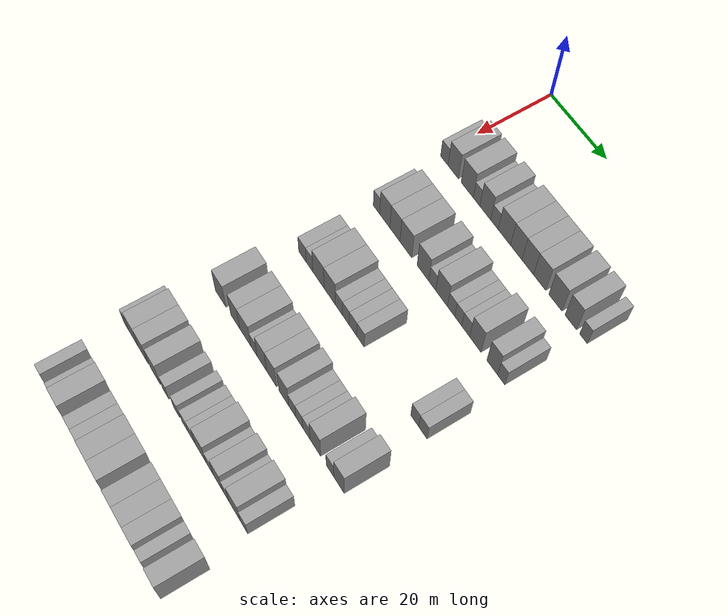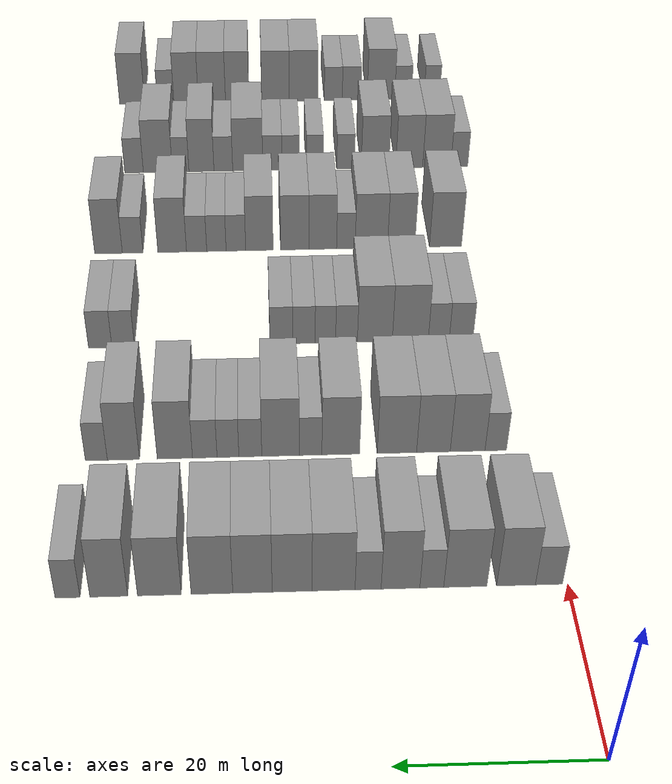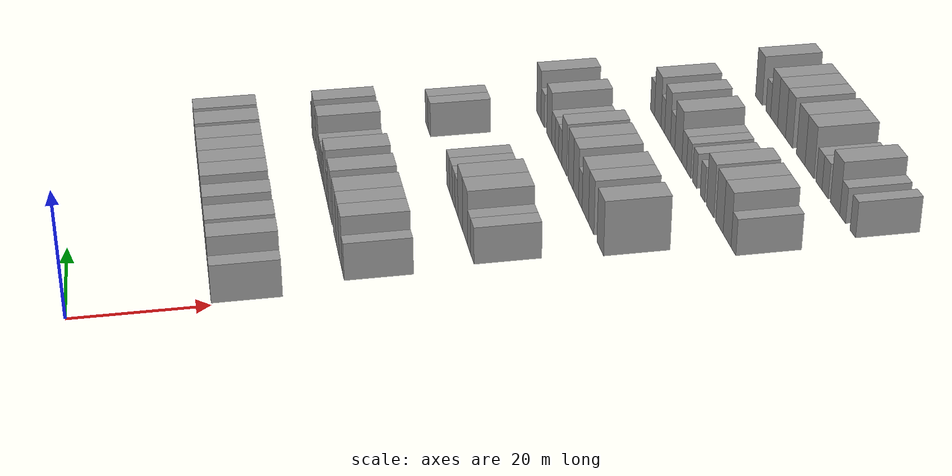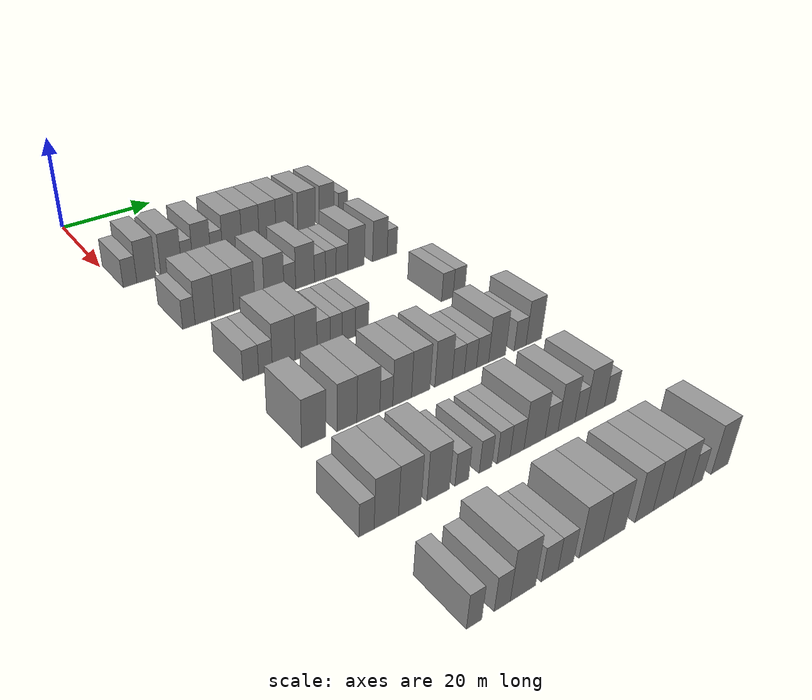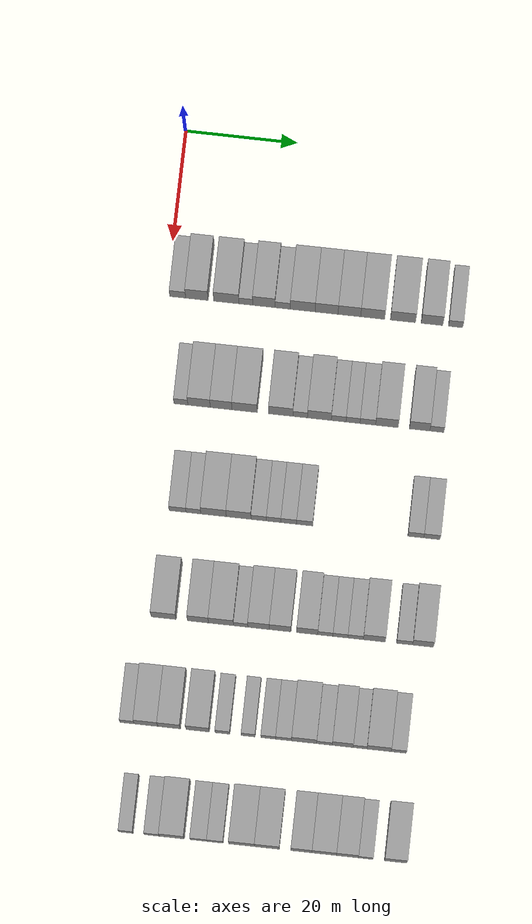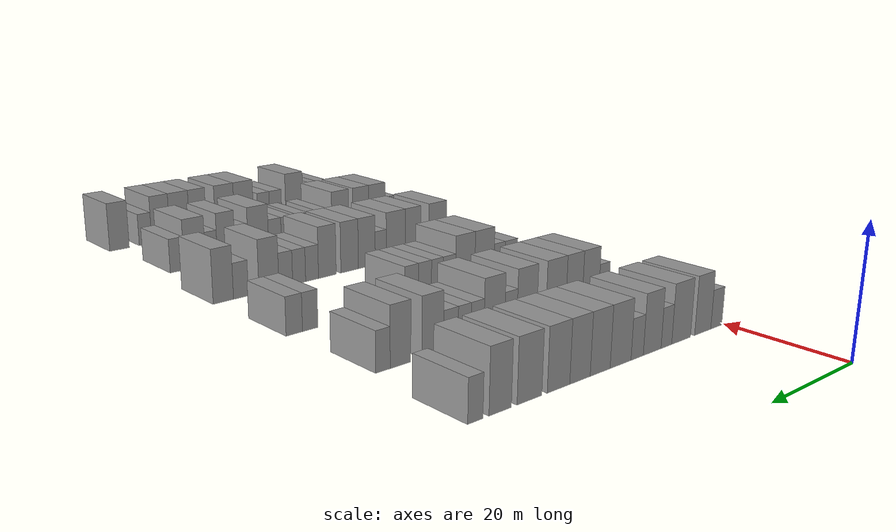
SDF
<sdf version="1.6">
 <world name="default">
  <model name="building_86">
   <static>1</static>
   <pose>25.0000 1.9750 0 0.000000 0.000000 0.000000</pose>
   <link name="link">
    <pose>0 0 3.00 0 0 0</pose>
    <collision name="collision"><geometry><box><size>10.0000 2.8184 6.0000</size></box></geometry></collision>
    <visual name="visual">
     <cast_shadows>0</cast_shadows>
     <geometry><box><size>10.0000 2.8184 6.0000</size></box></geometry>
     <material>
      <script>
       <uri>model://grey_wall/materials/scripts</uri>
       <uri>model://grey_wall/materials/textures</uri>
       <name>vrc/grey_wall</name>
      </script>
     </material>
    </visual>
   </link>
  </model>
  <model name="building_87">
   <static>1</static>
   <pose>25.0000 5.3856 0 0.000000 0.000000 0.000000</pose>
   <link name="link">
    <pose>0 0 4.50 0 0 0</pose>
    <collision name="collision"><geometry><box><size>10.0000 4.0027 9.0000</size></box></geometry></collision>
    <visual name="visual">
     <cast_shadows>0</cast_shadows>
     <geometry><box><size>10.0000 4.0027 9.0000</size></box></geometry>
     <material>
      <script>
       <uri>model://grey_wall/materials/scripts</uri>
       <uri>model://grey_wall/materials/textures</uri>
       <name>vrc/grey_wall</name>
      </script>
     </material>
    </visual>
   </link>
  </model>
  <model name="building_88">
   <static>1</static>
   <pose>25.0000 10.6264 0 0.000000 0.000000 0.000000</pose>
   <link name="link">
    <pose>0 0 4.50 0 0 0</pose>
    <collision name="collision"><geometry><box><size>10.0000 4.4790 9.0000</size></box></geometry></collision>
    <visual name="visual">
     <cast_shadows>0</cast_shadows>
     <geometry><box><size>10.0000 4.4790 9.0000</size></box></geometry>
     <material>
      <script>
       <uri>model://grey_wall/materials/scripts</uri>
       <uri>model://grey_wall/materials/textures</uri>
       <name>vrc/grey_wall</name>
      </script>
     </material>
    </visual>
   </link>
  </model>
  <model name="building_89">
   <static>1</static>
   <pose>25.0000 14.0957 0 0.000000 0.000000 0.000000</pose>
   <link name="link">
    <pose>0 0 3.00 0 0 0</pose>
    <collision name="collision"><geometry><box><size>10.0000 2.4597 6.0000</size></box></geometry></collision>
    <visual name="visual">
     <cast_shadows>0</cast_shadows>
     <geometry><box><size>10.0000 2.4597 6.0000</size></box></geometry>
     <material>
      <script>
       <uri>model://grey_wall/materials/scripts</uri>
       <uri>model://grey_wall/materials/textures</uri>
       <name>vrc/grey_wall</name>
      </script>
     </material>
    </visual>
   </link>
  </model>
  <model name="building_90">
   <static>1</static>
   <pose>25.0000 17.3226 0 0.000000 0.000000 0.000000</pose>
   <link name="link">
    <pose>0 0 4.50 0 0 0</pose>
    <collision name="collision"><geometry><box><size>10.0000 3.9941 9.0000</size></box></geometry></collision>
    <visual name="visual">
     <cast_shadows>0</cast_shadows>
     <geometry><box><size>10.0000 3.9941 9.0000</size></box></geometry>
     <material>
      <script>
       <uri>model://grey_wall/materials/scripts</uri>
       <uri>model://grey_wall/materials/textures</uri>
       <name>vrc/grey_wall</name>
      </script>
     </material>
    </visual>
   </link>
  </model>
  <model name="building_91">
   <static>1</static>
   <pose>25.0000 20.6604 0 0.000000 0.000000 0.000000</pose>
   <link name="link">
    <pose>0 0 3.00 0 0 0</pose>
    <collision name="collision"><geometry><box><size>10.0000 2.6816 6.0000</size></box></geometry></collision>
    <visual name="visual">
     <cast_shadows>0</cast_shadows>
     <geometry><box><size>10.0000 2.6816 6.0000</size></box></geometry>
     <material>
      <script>
       <uri>model://grey_wall/materials/scripts</uri>
       <uri>model://grey_wall/materials/textures</uri>
       <name>vrc/grey_wall</name>
      </script>
     </material>
    </visual>
   </link>
  </model>
  <model name="building_92">
   <static>1</static>
   <pose>25.0000 24.2157 0 0.000000 0.000000 0.000000</pose>
   <link name="link">
    <pose>0 0 4.50 0 0 0</pose>
    <collision name="collision"><geometry><box><size>10.0000 4.4291 9.0000</size></box></geometry></collision>
    <visual name="visual">
     <cast_shadows>0</cast_shadows>
     <geometry><box><size>10.0000 4.4291 9.0000</size></box></geometry>
     <material>
      <script>
       <uri>model://grey_wall/materials/scripts</uri>
       <uri>model://grey_wall/materials/textures</uri>
       <name>vrc/grey_wall</name>
      </script>
     </material>
    </visual>
   </link>
  </model>
  <model name="building_93">
   <static>1</static>
   <pose>25.0000 28.4661 0 0.000000 0.000000 0.000000</pose>
   <link name="link">
    <pose>0 0 4.50 0 0 0</pose>
    <collision name="collision"><geometry><box><size>10.0000 4.0716 9.0000</size></box></geometry></collision>
    <visual name="visual">
     <cast_shadows>0</cast_shadows>
     <geometry><box><size>10.0000 4.0716 9.0000</size></box></geometry>
     <material>
      <script>
       <uri>model://grey_wall/materials/scripts</uri>
       <uri>model://grey_wall/materials/textures</uri>
       <name>vrc/grey_wall</name>
      </script>
     </material>
    </visual>
   </link>
  </model>
  <model name="building_94">
   <static>1</static>
   <pose>25.0000 32.5150 0 0.000000 0.000000 0.000000</pose>
   <link name="link">
    <pose>0 0 4.50 0 0 0</pose>
    <collision name="collision"><geometry><box><size>10.0000 4.0262 9.0000</size></box></geometry></collision>
    <visual name="visual">
     <cast_shadows>0</cast_shadows>
     <geometry><box><size>10.0000 4.0262 9.0000</size></box></geometry>
     <material>
      <script>
       <uri>model://grey_wall/materials/scripts</uri>
       <uri>model://grey_wall/materials/textures</uri>
       <name>vrc/grey_wall</name>
      </script>
     </material>
    </visual>
   </link>
  </model>
  <model name="building_95">
   <static>1</static>
   <pose>25.0000 36.6616 0 0.000000 0.000000 0.000000</pose>
   <link name="link">
    <pose>0 0 4.50 0 0 0</pose>
    <collision name="collision"><geometry><box><size>10.0000 4.2671 9.0000</size></box></geometry></collision>
    <visual name="visual">
     <cast_shadows>0</cast_shadows>
     <geometry><box><size>10.0000 4.2671 9.0000</size></box></geometry>
     <material>
      <script>
       <uri>model://grey_wall/materials/scripts</uri>
       <uri>model://grey_wall/materials/textures</uri>
       <name>vrc/grey_wall</name>
      </script>
     </material>
    </visual>
   </link>
  </model>
  <model name="building_96">
   <static>1</static>
   <pose>25.0000 42.0311 0 0.000000 0.000000 0.000000</pose>
   <link name="link">
    <pose>0 0 4.50 0 0 0</pose>
    <collision name="collision"><geometry><box><size>10.0000 4.4719 9.0000</size></box></geometry></collision>
    <visual name="visual">
     <cast_shadows>0</cast_shadows>
     <geometry><box><size>10.0000 4.4719 9.0000</size></box></geometry>
     <material>
      <script>
       <uri>model://grey_wall/materials/scripts</uri>
       <uri>model://grey_wall/materials/textures</uri>
       <name>vrc/grey_wall</name>
      </script>
     </material>
    </visual>
   </link>
  </model>
  <model name="building_97">
   <static>1</static>
   <pose>25.0000 47.1933 0 0.000000 0.000000 0.000000</pose>
   <link name="link">
    <pose>0 0 4.50 0 0 0</pose>
    <collision name="collision"><geometry><box><size>10.0000 3.8524 9.0000</size></box></geometry></collision>
    <visual name="visual">
     <cast_shadows>0</cast_shadows>
     <geometry><box><size>10.0000 3.8524 9.0000</size></box></geometry>
     <material>
      <script>
       <uri>model://grey_wall/materials/scripts</uri>
       <uri>model://grey_wall/materials/textures</uri>
       <name>vrc/grey_wall</name>
      </script>
     </material>
    </visual>
   </link>
  </model>
  <model name="building_98">
   <static>1</static>
   <pose>25.0000 51.3858 0 0.000000 0.000000 0.000000</pose>
   <link name="link">
    <pose>0 0 3.00 0 0 0</pose>
    <collision name="collision"><geometry><box><size>10.0000 2.5326 6.0000</size></box></geometry></collision>
    <visual name="visual">
     <cast_shadows>0</cast_shadows>
     <geometry><box><size>10.0000 2.5326 6.0000</size></box></geometry>
     <material>
      <script>
       <uri>model://grey_wall/materials/scripts</uri>
       <uri>model://grey_wall/materials/textures</uri>
       <name>vrc/grey_wall</name>
      </script>
     </material>
    </visual>
   </link>
  </model>
  <model name="building_257">
   <static>1</static>
   <pose>44.0000 4.6780 0 0.000000 0.000000 0.000000</pose>
   <link name="link">
    <pose>0 0 3.00 0 0 0</pose>
    <collision name="collision"><geometry><box><size>10.0000 2.4655 6.0000</size></box></geometry></collision>
    <visual name="visual">
     <cast_shadows>0</cast_shadows>
     <geometry><box><size>10.0000 2.4655 6.0000</size></box></geometry>
     <material>
      <script>
       <uri>model://grey_wall/materials/scripts</uri>
       <uri>model://grey_wall/materials/textures</uri>
       <name>vrc/grey_wall</name>
      </script>
     </material>
    </visual>
   </link>
  </model>
  <model name="building_258">
   <static>1</static>
   <pose>44.0000 7.8958 0 0.000000 0.000000 0.000000</pose>
   <link name="link">
    <pose>0 0 4.50 0 0 0</pose>
    <collision name="collision"><geometry><box><size>10.0000 3.9700 9.0000</size></box></geometry></collision>
    <visual name="visual">
     <cast_shadows>0</cast_shadows>
     <geometry><box><size>10.0000 3.9700 9.0000</size></box></geometry>
     <material>
      <script>
       <uri>model://grey_wall/materials/scripts</uri>
       <uri>model://grey_wall/materials/textures</uri>
       <name>vrc/grey_wall</name>
      </script>
     </material>
    </visual>
   </link>
  </model>
  <model name="building_259">
   <static>1</static>
   <pose>44.0000 11.8018 0 0.000000 0.000000 0.000000</pose>
   <link name="link">
    <pose>0 0 4.50 0 0 0</pose>
    <collision name="collision"><geometry><box><size>10.0000 3.8419 9.0000</size></box></geometry></collision>
    <visual name="visual">
     <cast_shadows>0</cast_shadows>
     <geometry><box><size>10.0000 3.8419 9.0000</size></box></geometry>
     <material>
      <script>
       <uri>model://grey_wall/materials/scripts</uri>
       <uri>model://grey_wall/materials/textures</uri>
       <name>vrc/grey_wall</name>
      </script>
     </material>
    </visual>
   </link>
  </model>
  <model name="building_260">
   <static>1</static>
   <pose>44.0000 15.9686 0 0.000000 0.000000 0.000000</pose>
   <link name="link">
    <pose>0 0 4.50 0 0 0</pose>
    <collision name="collision"><geometry><box><size>10.0000 4.4917 9.0000</size></box></geometry></collision>
    <visual name="visual">
     <cast_shadows>0</cast_shadows>
     <geometry><box><size>10.0000 4.4917 9.0000</size></box></geometry>
     <material>
      <script>
       <uri>model://grey_wall/materials/scripts</uri>
       <uri>model://grey_wall/materials/textures</uri>
       <name>vrc/grey_wall</name>
      </script>
     </material>
    </visual>
   </link>
  </model>
  <model name="building_261">
   <static>1</static>
   <pose>44.0000 22.3629 0 0.000000 0.000000 0.000000</pose>
   <link name="link">
    <pose>0 0 4.50 0 0 0</pose>
    <collision name="collision"><geometry><box><size>10.0000 4.2969 9.0000</size></box></geometry></collision>
    <visual name="visual">
     <cast_shadows>0</cast_shadows>
     <geometry><box><size>10.0000 4.2969 9.0000</size></box></geometry>
     <material>
      <script>
       <uri>model://grey_wall/materials/scripts</uri>
       <uri>model://grey_wall/materials/textures</uri>
       <name>vrc/grey_wall</name>
      </script>
     </material>
    </visual>
   </link>
  </model>
  <model name="building_262">
   <static>1</static>
   <pose>44.0000 25.8017 0 0.000000 0.000000 0.000000</pose>
   <link name="link">
    <pose>0 0 3.00 0 0 0</pose>
    <collision name="collision"><geometry><box><size>10.0000 2.5808 6.0000</size></box></geometry></collision>
    <visual name="visual">
     <cast_shadows>0</cast_shadows>
     <geometry><box><size>10.0000 2.5808 6.0000</size></box></geometry>
     <material>
      <script>
       <uri>model://grey_wall/materials/scripts</uri>
       <uri>model://grey_wall/materials/textures</uri>
       <name>vrc/grey_wall</name>
      </script>
     </material>
    </visual>
   </link>
  </model>
  <model name="building_263">
   <static>1</static>
   <pose>44.0000 29.2100 0 0.000000 0.000000 0.000000</pose>
   <link name="link">
    <pose>0 0 4.50 0 0 0</pose>
    <collision name="collision"><geometry><box><size>10.0000 4.2358 9.0000</size></box></geometry></collision>
    <visual name="visual">
     <cast_shadows>0</cast_shadows>
     <geometry><box><size>10.0000 4.2358 9.0000</size></box></geometry>
     <material>
      <script>
       <uri>model://grey_wall/materials/scripts</uri>
       <uri>model://grey_wall/materials/textures</uri>
       <name>vrc/grey_wall</name>
      </script>
     </material>
    </visual>
   </link>
  </model>
  <model name="building_264">
   <static>1</static>
   <pose>44.0000 32.6251 0 0.000000 0.000000 0.000000</pose>
   <link name="link">
    <pose>0 0 3.00 0 0 0</pose>
    <collision name="collision"><geometry><box><size>10.0000 2.5943 6.0000</size></box></geometry></collision>
    <visual name="visual">
     <cast_shadows>0</cast_shadows>
     <geometry><box><size>10.0000 2.5943 6.0000</size></box></geometry>
     <material>
      <script>
       <uri>model://grey_wall/materials/scripts</uri>
       <uri>model://grey_wall/materials/textures</uri>
       <name>vrc/grey_wall</name>
      </script>
     </material>
    </visual>
   </link>
  </model>
  <model name="building_265">
   <static>1</static>
   <pose>44.0000 35.1582 0 0.000000 0.000000 0.000000</pose>
   <link name="link">
    <pose>0 0 3.00 0 0 0</pose>
    <collision name="collision"><geometry><box><size>10.0000 2.4719 6.0000</size></box></geometry></collision>
    <visual name="visual">
     <cast_shadows>0</cast_shadows>
     <geometry><box><size>10.0000 2.4719 6.0000</size></box></geometry>
     <material>
      <script>
       <uri>model://grey_wall/materials/scripts</uri>
       <uri>model://grey_wall/materials/textures</uri>
       <name>vrc/grey_wall</name>
      </script>
     </material>
    </visual>
   </link>
  </model>
  <model name="building_266">
   <static>1</static>
   <pose>44.0000 37.7846 0 0.000000 0.000000 0.000000</pose>
   <link name="link">
    <pose>0 0 3.00 0 0 0</pose>
    <collision name="collision"><geometry><box><size>10.0000 2.7810 6.0000</size></box></geometry></collision>
    <visual name="visual">
     <cast_shadows>0</cast_shadows>
     <geometry><box><size>10.0000 2.7810 6.0000</size></box></geometry>
     <material>
      <script>
       <uri>model://grey_wall/materials/scripts</uri>
       <uri>model://grey_wall/materials/textures</uri>
       <name>vrc/grey_wall</name>
      </script>
     </material>
    </visual>
   </link>
  </model>
  <model name="building_267">
   <static>1</static>
   <pose>44.0000 41.1670 0 0.000000 0.000000 0.000000</pose>
   <link name="link">
    <pose>0 0 4.50 0 0 0</pose>
    <collision name="collision"><geometry><box><size>10.0000 3.9839 9.0000</size></box></geometry></collision>
    <visual name="visual">
     <cast_shadows>0</cast_shadows>
     <geometry><box><size>10.0000 3.9839 9.0000</size></box></geometry>
     <material>
      <script>
       <uri>model://grey_wall/materials/scripts</uri>
       <uri>model://grey_wall/materials/textures</uri>
       <name>vrc/grey_wall</name>
      </script>
     </material>
    </visual>
   </link>
  </model>
  <model name="building_268">
   <static>1</static>
   <pose>44.0000 46.9710 0 0.000000 0.000000 0.000000</pose>
   <link name="link">
    <pose>0 0 4.50 0 0 0</pose>
    <collision name="collision"><geometry><box><size>10.0000 3.6241 9.0000</size></box></geometry></collision>
    <visual name="visual">
     <cast_shadows>0</cast_shadows>
     <geometry><box><size>10.0000 3.6241 9.0000</size></box></geometry>
     <material>
      <script>
       <uri>model://grey_wall/materials/scripts</uri>
       <uri>model://grey_wall/materials/textures</uri>
       <name>vrc/grey_wall</name>
      </script>
     </material>
    </visual>
   </link>
  </model>
  <model name="building_269">
   <static>1</static>
   <pose>44.0000 50.0210 0 0.000000 0.000000 0.000000</pose>
   <link name="link">
    <pose>0 0 3.00 0 0 0</pose>
    <collision name="collision"><geometry><box><size>10.0000 2.4760 6.0000</size></box></geometry></collision>
    <visual name="visual">
     <cast_shadows>0</cast_shadows>
     <geometry><box><size>10.0000 2.4760 6.0000</size></box></geometry>
     <material>
      <script>
       <uri>model://grey_wall/materials/scripts</uri>
       <uri>model://grey_wall/materials/textures</uri>
       <name>vrc/grey_wall</name>
      </script>
     </material>
    </visual>
   </link>
  </model>
  <model name="building_441">
   <static>1</static>
   <pose>63.0000 6.2036 0 0.000000 0.000000 0.000000</pose>
   <link name="link">
    <pose>0 0 3.00 0 0 0</pose>
    <collision name="collision"><geometry><box><size>10.0000 2.9820 6.0000</size></box></geometry></collision>
    <visual name="visual">
     <cast_shadows>0</cast_shadows>
     <geometry><box><size>10.0000 2.9820 6.0000</size></box></geometry>
     <material>
      <script>
       <uri>model://grey_wall/materials/scripts</uri>
       <uri>model://grey_wall/materials/textures</uri>
       <name>vrc/grey_wall</name>
      </script>
     </material>
    </visual>
   </link>
  </model>
  <model name="building_442">
   <static>1</static>
   <pose>63.0000 9.0060 0 0.000000 0.000000 0.000000</pose>
   <link name="link">
    <pose>0 0 3.00 0 0 0</pose>
    <collision name="collision"><geometry><box><size>10.0000 2.6228 6.0000</size></box></geometry></collision>
    <visual name="visual">
     <cast_shadows>0</cast_shadows>
     <geometry><box><size>10.0000 2.6228 6.0000</size></box></geometry>
     <material>
      <script>
       <uri>model://grey_wall/materials/scripts</uri>
       <uri>model://grey_wall/materials/textures</uri>
       <name>vrc/grey_wall</name>
      </script>
     </material>
    </visual>
   </link>
  </model>
  <model name="building_443">
   <static>1</static>
   <pose>63.0000 12.5670 0 0.000000 0.000000 0.000000</pose>
   <link name="link">
    <pose>0 0 4.50 0 0 0</pose>
    <collision name="collision"><geometry><box><size>10.0000 4.4991 9.0000</size></box></geometry></collision>
    <visual name="visual">
     <cast_shadows>0</cast_shadows>
     <geometry><box><size>10.0000 4.4991 9.0000</size></box></geometry>
     <material>
      <script>
       <uri>model://grey_wall/materials/scripts</uri>
       <uri>model://grey_wall/materials/textures</uri>
       <name>vrc/grey_wall</name>
      </script>
     </material>
    </visual>
   </link>
  </model>
  <model name="building_444">
   <static>1</static>
   <pose>63.0000 16.9994 0 0.000000 0.000000 0.000000</pose>
   <link name="link">
    <pose>0 0 4.50 0 0 0</pose>
    <collision name="collision"><geometry><box><size>10.0000 4.3657 9.0000</size></box></geometry></collision>
    <visual name="visual">
     <cast_shadows>0</cast_shadows>
     <geometry><box><size>10.0000 4.3657 9.0000</size></box></geometry>
     <material>
      <script>
       <uri>model://grey_wall/materials/scripts</uri>
       <uri>model://grey_wall/materials/textures</uri>
       <name>vrc/grey_wall</name>
      </script>
     </material>
    </visual>
   </link>
  </model>
  <model name="building_445">
   <static>1</static>
   <pose>63.0000 20.5423 0 0.000000 0.000000 0.000000</pose>
   <link name="link">
    <pose>0 0 3.00 0 0 0</pose>
    <collision name="collision"><geometry><box><size>10.0000 2.7200 6.0000</size></box></geometry></collision>
    <visual name="visual">
     <cast_shadows>0</cast_shadows>
     <geometry><box><size>10.0000 2.7200 6.0000</size></box></geometry>
     <material>
      <script>
       <uri>model://grey_wall/materials/scripts</uri>
       <uri>model://grey_wall/materials/textures</uri>
       <name>vrc/grey_wall</name>
      </script>
     </material>
    </visual>
   </link>
  </model>
  <model name="building_446">
   <static>1</static>
   <pose>63.0000 23.1798 0 0.000000 0.000000 0.000000</pose>
   <link name="link">
    <pose>0 0 3.00 0 0 0</pose>
    <collision name="collision"><geometry><box><size>10.0000 2.5550 6.0000</size></box></geometry></collision>
    <visual name="visual">
     <cast_shadows>0</cast_shadows>
     <geometry><box><size>10.0000 2.5550 6.0000</size></box></geometry>
     <material>
      <script>
       <uri>model://grey_wall/materials/scripts</uri>
       <uri>model://grey_wall/materials/textures</uri>
       <name>vrc/grey_wall</name>
      </script>
     </material>
    </visual>
   </link>
  </model>
  <model name="building_447">
   <static>1</static>
   <pose>63.0000 25.8460 0 0.000000 0.000000 0.000000</pose>
   <link name="link">
    <pose>0 0 3.00 0 0 0</pose>
    <collision name="collision"><geometry><box><size>10.0000 2.7776 6.0000</size></box></geometry></collision>
    <visual name="visual">
     <cast_shadows>0</cast_shadows>
     <geometry><box><size>10.0000 2.7776 6.0000</size></box></geometry>
     <material>
      <script>
       <uri>model://grey_wall/materials/scripts</uri>
       <uri>model://grey_wall/materials/textures</uri>
       <name>vrc/grey_wall</name>
      </script>
     </material>
    </visual>
   </link>
  </model>
  <model name="building_448">
   <static>1</static>
   <pose>63.0000 28.6571 0 0.000000 0.000000 0.000000</pose>
   <link name="link">
    <pose>0 0 3.00 0 0 0</pose>
    <collision name="collision"><geometry><box><size>10.0000 2.8447 6.0000</size></box></geometry></collision>
    <visual name="visual">
     <cast_shadows>0</cast_shadows>
     <geometry><box><size>10.0000 2.8447 6.0000</size></box></geometry>
     <material>
      <script>
       <uri>model://grey_wall/materials/scripts</uri>
       <uri>model://grey_wall/materials/textures</uri>
       <name>vrc/grey_wall</name>
      </script>
     </material>
    </visual>
   </link>
  </model>
  <model name="building_449">
   <static>1</static>
   <pose>63.0000 48.2711 0 0.000000 0.000000 0.000000</pose>
   <link name="link">
    <pose>0 0 3.00 0 0 0</pose>
    <collision name="collision"><geometry><box><size>10.0000 2.7944 6.0000</size></box></geometry></collision>
    <visual name="visual">
     <cast_shadows>0</cast_shadows>
     <geometry><box><size>10.0000 2.7944 6.0000</size></box></geometry>
     <material>
      <script>
       <uri>model://grey_wall/materials/scripts</uri>
       <uri>model://grey_wall/materials/textures</uri>
       <name>vrc/grey_wall</name>
      </script>
     </material>
    </visual>
   </link>
  </model>
  <model name="building_450">
   <static>1</static>
   <pose>63.0000 51.1109 0 0.000000 0.000000 0.000000</pose>
   <link name="link">
    <pose>0 0 3.00 0 0 0</pose>
    <collision name="collision"><geometry><box><size>10.0000 2.8853 6.0000</size></box></geometry></collision>
    <visual name="visual">
     <cast_shadows>0</cast_shadows>
     <geometry><box><size>10.0000 2.8853 6.0000</size></box></geometry>
     <material>
      <script>
       <uri>model://grey_wall/materials/scripts</uri>
       <uri>model://grey_wall/materials/textures</uri>
       <name>vrc/grey_wall</name>
      </script>
     </material>
    </visual>
   </link>
  </model>
  <model name="building_602">
   <static>1</static>
   <pose>82.0000 5.9042 0 0.000000 0.000000 0.000000</pose>
   <link name="link">
    <pose>0 0 4.50 0 0 0</pose>
    <collision name="collision"><geometry><box><size>10.0000 4.3644 9.0000</size></box></geometry></collision>
    <visual name="visual">
     <cast_shadows>0</cast_shadows>
     <geometry><box><size>10.0000 4.3644 9.0000</size></box></geometry>
     <material>
      <script>
       <uri>model://grey_wall/materials/scripts</uri>
       <uri>model://grey_wall/materials/textures</uri>
       <name>vrc/grey_wall</name>
      </script>
     </material>
    </visual>
   </link>
  </model>
  <model name="building_603">
   <static>1</static>
   <pose>82.0000 11.9452 0 0.000000 0.000000 0.000000</pose>
   <link name="link">
    <pose>0 0 4.50 0 0 0</pose>
    <collision name="collision"><geometry><box><size>10.0000 3.7176 9.0000</size></box></geometry></collision>
    <visual name="visual">
     <cast_shadows>0</cast_shadows>
     <geometry><box><size>10.0000 3.7176 9.0000</size></box></geometry>
     <material>
      <script>
       <uri>model://grey_wall/materials/scripts</uri>
       <uri>model://grey_wall/materials/textures</uri>
       <name>vrc/grey_wall</name>
      </script>
     </material>
    </visual>
   </link>
  </model>
  <model name="building_604">
   <static>1</static>
   <pose>82.0000 16.0056 0 0.000000 0.000000 0.000000</pose>
   <link name="link">
    <pose>0 0 4.50 0 0 0</pose>
    <collision name="collision"><geometry><box><size>10.0000 4.4032 9.0000</size></box></geometry></collision>
    <visual name="visual">
     <cast_shadows>0</cast_shadows>
     <geometry><box><size>10.0000 4.4032 9.0000</size></box></geometry>
     <material>
      <script>
       <uri>model://grey_wall/materials/scripts</uri>
       <uri>model://grey_wall/materials/textures</uri>
       <name>vrc/grey_wall</name>
      </script>
     </material>
    </visual>
   </link>
  </model>
  <model name="building_605">
   <static>1</static>
   <pose>82.0000 19.4629 0 0.000000 0.000000 0.000000</pose>
   <link name="link">
    <pose>0 0 3.00 0 0 0</pose>
    <collision name="collision"><geometry><box><size>10.0000 2.5113 6.0000</size></box></geometry></collision>
    <visual name="visual">
     <cast_shadows>0</cast_shadows>
     <geometry><box><size>10.0000 2.5113 6.0000</size></box></geometry>
     <material>
      <script>
       <uri>model://grey_wall/materials/scripts</uri>
       <uri>model://grey_wall/materials/textures</uri>
       <name>vrc/grey_wall</name>
      </script>
     </material>
    </visual>
   </link>
  </model>
  <model name="building_606">
   <static>1</static>
   <pose>82.0000 22.6037 0 0.000000 0.000000 0.000000</pose>
   <link name="link">
    <pose>0 0 4.50 0 0 0</pose>
    <collision name="collision"><geometry><box><size>10.0000 3.7704 9.0000</size></box></geometry></collision>
    <visual name="visual">
     <cast_shadows>0</cast_shadows>
     <geometry><box><size>10.0000 3.7704 9.0000</size></box></geometry>
     <material>
      <script>
       <uri>model://grey_wall/materials/scripts</uri>
       <uri>model://grey_wall/materials/textures</uri>
       <name>vrc/grey_wall</name>
      </script>
     </material>
    </visual>
   </link>
  </model>
  <model name="building_607">
   <static>1</static>
   <pose>82.0000 26.3941 0 0.000000 0.000000 0.000000</pose>
   <link name="link">
    <pose>0 0 4.50 0 0 0</pose>
    <collision name="collision"><geometry><box><size>10.0000 3.8102 9.0000</size></box></geometry></collision>
    <visual name="visual">
     <cast_shadows>0</cast_shadows>
     <geometry><box><size>10.0000 3.8102 9.0000</size></box></geometry>
     <material>
      <script>
       <uri>model://grey_wall/materials/scripts</uri>
       <uri>model://grey_wall/materials/textures</uri>
       <name>vrc/grey_wall</name>
      </script>
     </material>
    </visual>
   </link>
  </model>
  <model name="building_608">
   <static>1</static>
   <pose>82.0000 31.1596 0 0.000000 0.000000 0.000000</pose>
   <link name="link">
    <pose>0 0 4.50 0 0 0</pose>
    <collision name="collision"><geometry><box><size>10.0000 3.7208 9.0000</size></box></geometry></collision>
    <visual name="visual">
     <cast_shadows>0</cast_shadows>
     <geometry><box><size>10.0000 3.7208 9.0000</size></box></geometry>
     <material>
      <script>
       <uri>model://grey_wall/materials/scripts</uri>
       <uri>model://grey_wall/materials/textures</uri>
       <name>vrc/grey_wall</name>
      </script>
     </material>
    </visual>
   </link>
  </model>
  <model name="building_609">
   <static>1</static>
   <pose>82.0000 34.3441 0 0.000000 0.000000 0.000000</pose>
   <link name="link">
    <pose>0 0 3.00 0 0 0</pose>
    <collision name="collision"><geometry><box><size>10.0000 2.6482 6.0000</size></box></geometry></collision>
    <visual name="visual">
     <cast_shadows>0</cast_shadows>
     <geometry><box><size>10.0000 2.6482 6.0000</size></box></geometry>
     <material>
      <script>
       <uri>model://grey_wall/materials/scripts</uri>
       <uri>model://grey_wall/materials/textures</uri>
       <name>vrc/grey_wall</name>
      </script>
     </material>
    </visual>
   </link>
  </model>
  <model name="building_610">
   <static>1</static>
   <pose>82.0000 36.9778 0 0.000000 0.000000 0.000000</pose>
   <link name="link">
    <pose>0 0 3.00 0 0 0</pose>
    <collision name="collision"><geometry><box><size>10.0000 2.6191 6.0000</size></box></geometry></collision>
    <visual name="visual">
     <cast_shadows>0</cast_shadows>
     <geometry><box><size>10.0000 2.6191 6.0000</size></box></geometry>
     <material>
      <script>
       <uri>model://grey_wall/materials/scripts</uri>
       <uri>model://grey_wall/materials/textures</uri>
       <name>vrc/grey_wall</name>
      </script>
     </material>
    </visual>
   </link>
  </model>
  <model name="building_611">
   <static>1</static>
   <pose>82.0000 39.6531 0 0.000000 0.000000 0.000000</pose>
   <link name="link">
    <pose>0 0 3.00 0 0 0</pose>
    <collision name="collision"><geometry><box><size>10.0000 2.7315 6.0000</size></box></geometry></collision>
    <visual name="visual">
     <cast_shadows>0</cast_shadows>
     <geometry><box><size>10.0000 2.7315 6.0000</size></box></geometry>
     <material>
      <script>
       <uri>model://grey_wall/materials/scripts</uri>
       <uri>model://grey_wall/materials/textures</uri>
       <name>vrc/grey_wall</name>
      </script>
     </material>
    </visual>
   </link>
  </model>
  <model name="building_612">
   <static>1</static>
   <pose>82.0000 42.9489 0 0.000000 0.000000 0.000000</pose>
   <link name="link">
    <pose>0 0 4.50 0 0 0</pose>
    <collision name="collision"><geometry><box><size>10.0000 3.8601 9.0000</size></box></geometry></collision>
    <visual name="visual">
     <cast_shadows>0</cast_shadows>
     <geometry><box><size>10.0000 3.8601 9.0000</size></box></geometry>
     <material>
      <script>
       <uri>model://grey_wall/materials/scripts</uri>
       <uri>model://grey_wall/materials/textures</uri>
       <name>vrc/grey_wall</name>
      </script>
     </material>
    </visual>
   </link>
  </model>
  <model name="building_613">
   <static>1</static>
   <pose>82.0000 48.2708 0 0.000000 0.000000 0.000000</pose>
   <link name="link">
    <pose>0 0 3.00 0 0 0</pose>
    <collision name="collision"><geometry><box><size>10.0000 2.7837 6.0000</size></box></geometry></collision>
    <visual name="visual">
     <cast_shadows>0</cast_shadows>
     <geometry><box><size>10.0000 2.7837 6.0000</size></box></geometry>
     <material>
      <script>
       <uri>model://grey_wall/materials/scripts</uri>
       <uri>model://grey_wall/materials/textures</uri>
       <name>vrc/grey_wall</name>
      </script>
     </material>
    </visual>
   </link>
  </model>
  <model name="building_614">
   <static>1</static>
   <pose>82.0000 51.5148 0 0.000000 0.000000 0.000000</pose>
   <link name="link">
    <pose>0 0 4.50 0 0 0</pose>
    <collision name="collision"><geometry><box><size>10.0000 3.7043 9.0000</size></box></geometry></collision>
    <visual name="visual">
     <cast_shadows>0</cast_shadows>
     <geometry><box><size>10.0000 3.7043 9.0000</size></box></geometry>
     <material>
      <script>
       <uri>model://grey_wall/materials/scripts</uri>
       <uri>model://grey_wall/materials/textures</uri>
       <name>vrc/grey_wall</name>
      </script>
     </material>
    </visual>
   </link>
  </model>
  <model name="building_778">
   <static>1</static>
   <pose>101.0000 1.6247 0 0.000000 0.000000 0.000000</pose>
   <link name="link">
    <pose>0 0 3.00 0 0 0</pose>
    <collision name="collision"><geometry><box><size>10.0000 2.5049 6.0000</size></box></geometry></collision>
    <visual name="visual">
     <cast_shadows>0</cast_shadows>
     <geometry><box><size>10.0000 2.5049 6.0000</size></box></geometry>
     <material>
      <script>
       <uri>model://grey_wall/materials/scripts</uri>
       <uri>model://grey_wall/materials/textures</uri>
       <name>vrc/grey_wall</name>
      </script>
     </material>
    </visual>
   </link>
  </model>
  <model name="building_779">
   <static>1</static>
   <pose>101.0000 4.9451 0 0.000000 0.000000 0.000000</pose>
   <link name="link">
    <pose>0 0 4.50 0 0 0</pose>
    <collision name="collision"><geometry><box><size>10.0000 4.1361 9.0000</size></box></geometry></collision>
    <visual name="visual">
     <cast_shadows>0</cast_shadows>
     <geometry><box><size>10.0000 4.1361 9.0000</size></box></geometry>
     <material>
      <script>
       <uri>model://grey_wall/materials/scripts</uri>
       <uri>model://grey_wall/materials/textures</uri>
       <name>vrc/grey_wall</name>
      </script>
     </material>
    </visual>
   </link>
  </model>
  <model name="building_780">
   <static>1</static>
   <pose>101.0000 8.9922 0 0.000000 0.000000 0.000000</pose>
   <link name="link">
    <pose>0 0 4.50 0 0 0</pose>
    <collision name="collision"><geometry><box><size>10.0000 3.9580 9.0000</size></box></geometry></collision>
    <visual name="visual">
     <cast_shadows>0</cast_shadows>
     <geometry><box><size>10.0000 3.9580 9.0000</size></box></geometry>
     <material>
      <script>
       <uri>model://grey_wall/materials/scripts</uri>
       <uri>model://grey_wall/materials/textures</uri>
       <name>vrc/grey_wall</name>
      </script>
     </material>
    </visual>
   </link>
  </model>
  <model name="building_781">
   <static>1</static>
   <pose>101.0000 14.0090 0 0.000000 0.000000 0.000000</pose>
   <link name="link">
    <pose>0 0 4.50 0 0 0</pose>
    <collision name="collision"><geometry><box><size>10.0000 4.0757 9.0000</size></box></geometry></collision>
    <visual name="visual">
     <cast_shadows>0</cast_shadows>
     <geometry><box><size>10.0000 4.0757 9.0000</size></box></geometry>
     <material>
      <script>
       <uri>model://grey_wall/materials/scripts</uri>
       <uri>model://grey_wall/materials/textures</uri>
       <name>vrc/grey_wall</name>
      </script>
     </material>
    </visual>
   </link>
  </model>
  <model name="building_782">
   <static>1</static>
   <pose>101.0000 18.3426 0 0.000000 0.000000 0.000000</pose>
   <link name="link">
    <pose>0 0 3.00 0 0 0</pose>
    <collision name="collision"><geometry><box><size>10.0000 2.5915 6.0000</size></box></geometry></collision>
    <visual name="visual">
     <cast_shadows>0</cast_shadows>
     <geometry><box><size>10.0000 2.5915 6.0000</size></box></geometry>
     <material>
      <script>
       <uri>model://grey_wall/materials/scripts</uri>
       <uri>model://grey_wall/materials/textures</uri>
       <name>vrc/grey_wall</name>
      </script>
     </material>
    </visual>
   </link>
  </model>
  <model name="building_783">
   <static>1</static>
   <pose>101.0000 22.8567 0 0.000000 0.000000 0.000000</pose>
   <link name="link">
    <pose>0 0 3.00 0 0 0</pose>
    <collision name="collision"><geometry><box><size>10.0000 2.4367 6.0000</size></box></geometry></collision>
    <visual name="visual">
     <cast_shadows>0</cast_shadows>
     <geometry><box><size>10.0000 2.4367 6.0000</size></box></geometry>
     <material>
      <script>
       <uri>model://grey_wall/materials/scripts</uri>
       <uri>model://grey_wall/materials/textures</uri>
       <name>vrc/grey_wall</name>
      </script>
     </material>
    </visual>
   </link>
  </model>
  <model name="building_784">
   <static>1</static>
   <pose>101.0000 26.3698 0 0.000000 0.000000 0.000000</pose>
   <link name="link">
    <pose>0 0 3.00 0 0 0</pose>
    <collision name="collision"><geometry><box><size>10.0000 2.5895 6.0000</size></box></geometry></collision>
    <visual name="visual">
     <cast_shadows>0</cast_shadows>
     <geometry><box><size>10.0000 2.5895 6.0000</size></box></geometry>
     <material>
      <script>
       <uri>model://grey_wall/materials/scripts</uri>
       <uri>model://grey_wall/materials/textures</uri>
       <name>vrc/grey_wall</name>
      </script>
     </material>
    </visual>
   </link>
  </model>
  <model name="building_785">
   <static>1</static>
   <pose>101.0000 29.0653 0 0.000000 0.000000 0.000000</pose>
   <link name="link">
    <pose>0 0 3.00 0 0 0</pose>
    <collision name="collision"><geometry><box><size>10.0000 2.8015 6.0000</size></box></geometry></collision>
    <visual name="visual">
     <cast_shadows>0</cast_shadows>
     <geometry><box><size>10.0000 2.8015 6.0000</size></box></geometry>
     <material>
      <script>
       <uri>model://grey_wall/materials/scripts</uri>
       <uri>model://grey_wall/materials/textures</uri>
       <name>vrc/grey_wall</name>
      </script>
     </material>
    </visual>
   </link>
  </model>
  <model name="building_786">
   <static>1</static>
   <pose>101.0000 32.6621 0 0.000000 0.000000 0.000000</pose>
   <link name="link">
    <pose>0 0 4.50 0 0 0</pose>
    <collision name="collision"><geometry><box><size>10.0000 4.3921 9.0000</size></box></geometry></collision>
    <visual name="visual">
     <cast_shadows>0</cast_shadows>
     <geometry><box><size>10.0000 4.3921 9.0000</size></box></geometry>
     <material>
      <script>
       <uri>model://grey_wall/materials/scripts</uri>
       <uri>model://grey_wall/materials/textures</uri>
       <name>vrc/grey_wall</name>
      </script>
     </material>
    </visual>
   </link>
  </model>
  <model name="building_787">
   <static>1</static>
   <pose>101.0000 36.2251 0 0.000000 0.000000 0.000000</pose>
   <link name="link">
    <pose>0 0 3.00 0 0 0</pose>
    <collision name="collision"><geometry><box><size>10.0000 2.7339 6.0000</size></box></geometry></collision>
    <visual name="visual">
     <cast_shadows>0</cast_shadows>
     <geometry><box><size>10.0000 2.7339 6.0000</size></box></geometry>
     <material>
      <script>
       <uri>model://grey_wall/materials/scripts</uri>
       <uri>model://grey_wall/materials/textures</uri>
       <name>vrc/grey_wall</name>
      </script>
     </material>
    </visual>
   </link>
  </model>
  <model name="building_788">
   <static>1</static>
   <pose>101.0000 39.4159 0 0.000000 0.000000 0.000000</pose>
   <link name="link">
    <pose>0 0 4.50 0 0 0</pose>
    <collision name="collision"><geometry><box><size>10.0000 3.6477 9.0000</size></box></geometry></collision>
    <visual name="visual">
     <cast_shadows>0</cast_shadows>
     <geometry><box><size>10.0000 3.6477 9.0000</size></box></geometry>
     <material>
      <script>
       <uri>model://grey_wall/materials/scripts</uri>
       <uri>model://grey_wall/materials/textures</uri>
       <name>vrc/grey_wall</name>
      </script>
     </material>
    </visual>
   </link>
  </model>
  <model name="building_789">
   <static>1</static>
   <pose>101.0000 42.4457 0 0.000000 0.000000 0.000000</pose>
   <link name="link">
    <pose>0 0 3.00 0 0 0</pose>
    <collision name="collision"><geometry><box><size>10.0000 2.4117 6.0000</size></box></geometry></collision>
    <visual name="visual">
     <cast_shadows>0</cast_shadows>
     <geometry><box><size>10.0000 2.4117 6.0000</size></box></geometry>
     <material>
      <script>
       <uri>model://grey_wall/materials/scripts</uri>
       <uri>model://grey_wall/materials/textures</uri>
       <name>vrc/grey_wall</name>
      </script>
     </material>
    </visual>
   </link>
  </model>
  <model name="building_790">
   <static>1</static>
   <pose>101.0000 45.7668 0 0.000000 0.000000 0.000000</pose>
   <link name="link">
    <pose>0 0 4.50 0 0 0</pose>
    <collision name="collision"><geometry><box><size>10.0000 4.2306 9.0000</size></box></geometry></collision>
    <visual name="visual">
     <cast_shadows>0</cast_shadows>
     <geometry><box><size>10.0000 4.2306 9.0000</size></box></geometry>
     <material>
      <script>
       <uri>model://grey_wall/materials/scripts</uri>
       <uri>model://grey_wall/materials/textures</uri>
       <name>vrc/grey_wall</name>
      </script>
     </material>
    </visual>
   </link>
  </model>
  <model name="building_791">
   <static>1</static>
   <pose>101.0000 49.2324 0 0.000000 0.000000 0.000000</pose>
   <link name="link">
    <pose>0 0 3.00 0 0 0</pose>
    <collision name="collision"><geometry><box><size>10.0000 2.7007 6.0000</size></box></geometry></collision>
    <visual name="visual">
     <cast_shadows>0</cast_shadows>
     <geometry><box><size>10.0000 2.7007 6.0000</size></box></geometry>
     <material>
      <script>
       <uri>model://grey_wall/materials/scripts</uri>
       <uri>model://grey_wall/materials/textures</uri>
       <name>vrc/grey_wall</name>
      </script>
     </material>
    </visual>
   </link>
  </model>
  <model name="building_952">
   <static>1</static>
   <pose>120.0000 3.5625 0 0.000000 0.000000 0.000000</pose>
   <link name="link">
    <pose>0 0 3.00 0 0 0</pose>
    <collision name="collision"><geometry><box><size>10.0000 2.4623 6.0000</size></box></geometry></collision>
    <visual name="visual">
     <cast_shadows>0</cast_shadows>
     <geometry><box><size>10.0000 2.4623 6.0000</size></box></geometry>
     <material>
      <script>
       <uri>model://grey_wall/materials/scripts</uri>
       <uri>model://grey_wall/materials/textures</uri>
       <name>vrc/grey_wall</name>
      </script>
     </material>
    </visual>
   </link>
  </model>
  <model name="building_953">
   <static>1</static>
   <pose>120.0000 8.1155 0 0.000000 0.000000 0.000000</pose>
   <link name="link">
    <pose>0 0 3.00 0 0 0</pose>
    <collision name="collision"><geometry><box><size>10.0000 2.6438 6.0000</size></box></geometry></collision>
    <visual name="visual">
     <cast_shadows>0</cast_shadows>
     <geometry><box><size>10.0000 2.6438 6.0000</size></box></geometry>
     <material>
      <script>
       <uri>model://grey_wall/materials/scripts</uri>
       <uri>model://grey_wall/materials/textures</uri>
       <name>vrc/grey_wall</name>
      </script>
     </material>
    </visual>
   </link>
  </model>
  <model name="building_954">
   <static>1</static>
   <pose>120.0000 11.6049 0 0.000000 0.000000 0.000000</pose>
   <link name="link">
    <pose>0 0 4.50 0 0 0</pose>
    <collision name="collision"><geometry><box><size>10.0000 4.3350 9.0000</size></box></geometry></collision>
    <visual name="visual">
     <cast_shadows>0</cast_shadows>
     <geometry><box><size>10.0000 4.3350 9.0000</size></box></geometry>
     <material>
      <script>
       <uri>model://grey_wall/materials/scripts</uri>
       <uri>model://grey_wall/materials/textures</uri>
       <name>vrc/grey_wall</name>
      </script>
     </material>
    </visual>
   </link>
  </model>
  <model name="building_955">
   <static>1</static>
   <pose>120.0000 16.2438 0 0.000000 0.000000 0.000000</pose>
   <link name="link">
    <pose>0 0 3.00 0 0 0</pose>
    <collision name="collision"><geometry><box><size>10.0000 2.9429 6.0000</size></box></geometry></collision>
    <visual name="visual">
     <cast_shadows>0</cast_shadows>
     <geometry><box><size>10.0000 2.9429 6.0000</size></box></geometry>
     <material>
      <script>
       <uri>model://grey_wall/materials/scripts</uri>
       <uri>model://grey_wall/materials/textures</uri>
       <name>vrc/grey_wall</name>
      </script>
     </material>
    </visual>
   </link>
  </model>
  <model name="building_956">
   <static>1</static>
   <pose>120.0000 19.1315 0 0.000000 0.000000 0.000000</pose>
   <link name="link">
    <pose>0 0 3.00 0 0 0</pose>
    <collision name="collision"><geometry><box><size>10.0000 2.8325 6.0000</size></box></geometry></collision>
    <visual name="visual">
     <cast_shadows>0</cast_shadows>
     <geometry><box><size>10.0000 2.8325 6.0000</size></box></geometry>
     <material>
      <script>
       <uri>model://grey_wall/materials/scripts</uri>
       <uri>model://grey_wall/materials/textures</uri>
       <name>vrc/grey_wall</name>
      </script>
     </material>
    </visual>
   </link>
  </model>
  <model name="building_957">
   <static>1</static>
   <pose>120.0000 23.7978 0 0.000000 0.000000 0.000000</pose>
   <link name="link">
    <pose>0 0 4.50 0 0 0</pose>
    <collision name="collision"><geometry><box><size>10.0000 4.5000 9.0000</size></box></geometry></collision>
    <visual name="visual">
     <cast_shadows>0</cast_shadows>
     <geometry><box><size>10.0000 4.5000 9.0000</size></box></geometry>
     <material>
      <script>
       <uri>model://grey_wall/materials/scripts</uri>
       <uri>model://grey_wall/materials/textures</uri>
       <name>vrc/grey_wall</name>
      </script>
     </material>
    </visual>
   </link>
  </model>
  <model name="building_958">
   <static>1</static>
   <pose>120.0000 28.2172 0 0.000000 0.000000 0.000000</pose>
   <link name="link">
    <pose>0 0 4.50 0 0 0</pose>
    <collision name="collision"><geometry><box><size>10.0000 4.3388 9.0000</size></box></geometry></collision>
    <visual name="visual">
     <cast_shadows>0</cast_shadows>
     <geometry><box><size>10.0000 4.3388 9.0000</size></box></geometry>
     <material>
      <script>
       <uri>model://grey_wall/materials/scripts</uri>
       <uri>model://grey_wall/materials/textures</uri>
       <name>vrc/grey_wall</name>
      </script>
     </material>
    </visual>
   </link>
  </model>
  <model name="building_959">
   <static>1</static>
   <pose>120.0000 34.2250 0 0.000000 0.000000 0.000000</pose>
   <link name="link">
    <pose>0 0 4.50 0 0 0</pose>
    <collision name="collision"><geometry><box><size>10.0000 3.6769 9.0000</size></box></geometry></collision>
    <visual name="visual">
     <cast_shadows>0</cast_shadows>
     <geometry><box><size>10.0000 3.6769 9.0000</size></box></geometry>
     <material>
      <script>
       <uri>model://grey_wall/materials/scripts</uri>
       <uri>model://grey_wall/materials/textures</uri>
       <name>vrc/grey_wall</name>
      </script>
     </material>
    </visual>
   </link>
  </model>
  <model name="building_960">
   <static>1</static>
   <pose>120.0000 38.1972 0 0.000000 0.000000 0.000000</pose>
   <link name="link">
    <pose>0 0 4.50 0 0 0</pose>
    <collision name="collision"><geometry><box><size>10.0000 4.2674 9.0000</size></box></geometry></collision>
    <visual name="visual">
     <cast_shadows>0</cast_shadows>
     <geometry><box><size>10.0000 4.2674 9.0000</size></box></geometry>
     <material>
      <script>
       <uri>model://grey_wall/materials/scripts</uri>
       <uri>model://grey_wall/materials/textures</uri>
       <name>vrc/grey_wall</name>
      </script>
     </material>
    </visual>
   </link>
  </model>
  <model name="building_961">
   <static>1</static>
   <pose>120.0000 42.2434 0 0.000000 0.000000 0.000000</pose>
   <link name="link">
    <pose>0 0 4.50 0 0 0</pose>
    <collision name="collision"><geometry><box><size>10.0000 3.8251 9.0000</size></box></geometry></collision>
    <visual name="visual">
     <cast_shadows>0</cast_shadows>
     <geometry><box><size>10.0000 3.8251 9.0000</size></box></geometry>
     <material>
      <script>
       <uri>model://grey_wall/materials/scripts</uri>
       <uri>model://grey_wall/materials/textures</uri>
       <name>vrc/grey_wall</name>
      </script>
     </material>
    </visual>
   </link>
  </model>
  <model name="building_962">
   <static>1</static>
   <pose>120.0000 45.4483 0 0.000000 0.000000 0.000000</pose>
   <link name="link">
    <pose>0 0 3.00 0 0 0</pose>
    <collision name="collision"><geometry><box><size>10.0000 2.5847 6.0000</size></box></geometry></collision>
    <visual name="visual">
     <cast_shadows>0</cast_shadows>
     <geometry><box><size>10.0000 2.5847 6.0000</size></box></geometry>
     <material>
      <script>
       <uri>model://grey_wall/materials/scripts</uri>
       <uri>model://grey_wall/materials/textures</uri>
       <name>vrc/grey_wall</name>
      </script>
     </material>
    </visual>
   </link>
  </model>
  <model name="building_963">
   <static>1</static>
   <pose>120.0000 50.6893 0 0.000000 0.000000 0.000000</pose>
   <link name="link">
    <pose>0 0 4.50 0 0 0</pose>
    <collision name="collision"><geometry><box><size>10.0000 3.8974 9.0000</size></box></geometry></collision>
    <visual name="visual">
     <cast_shadows>0</cast_shadows>
     <geometry><box><size>10.0000 3.8974 9.0000</size></box></geometry>
     <material>
      <script>
       <uri>model://grey_wall/materials/scripts</uri>
       <uri>model://grey_wall/materials/textures</uri>
       <name>vrc/grey_wall</name>
      </script>
     </material>
    </visual>
   </link>
  </model>
 </world>
</sdf>
